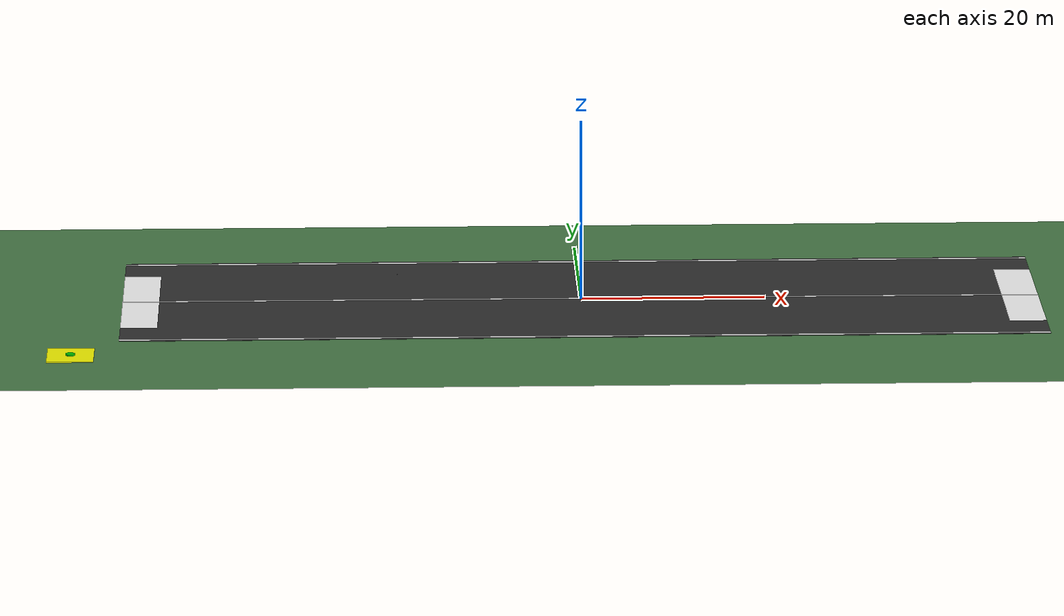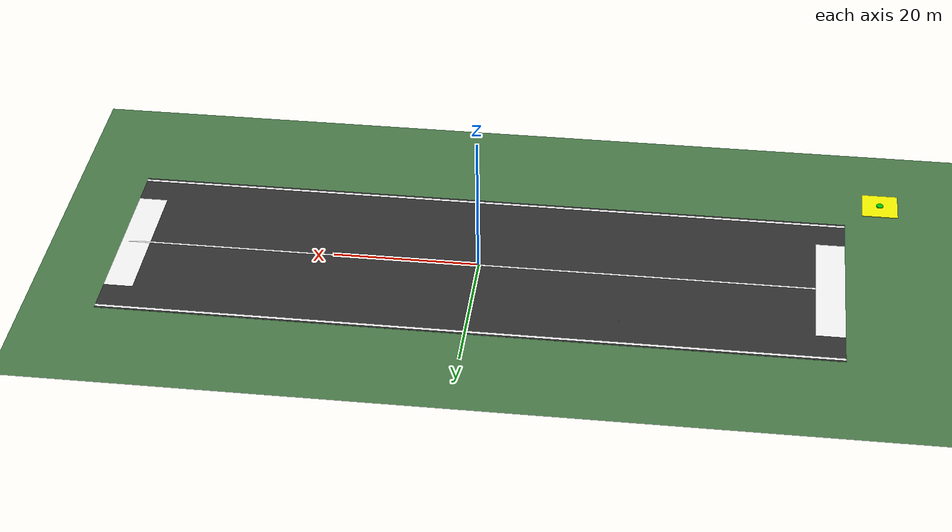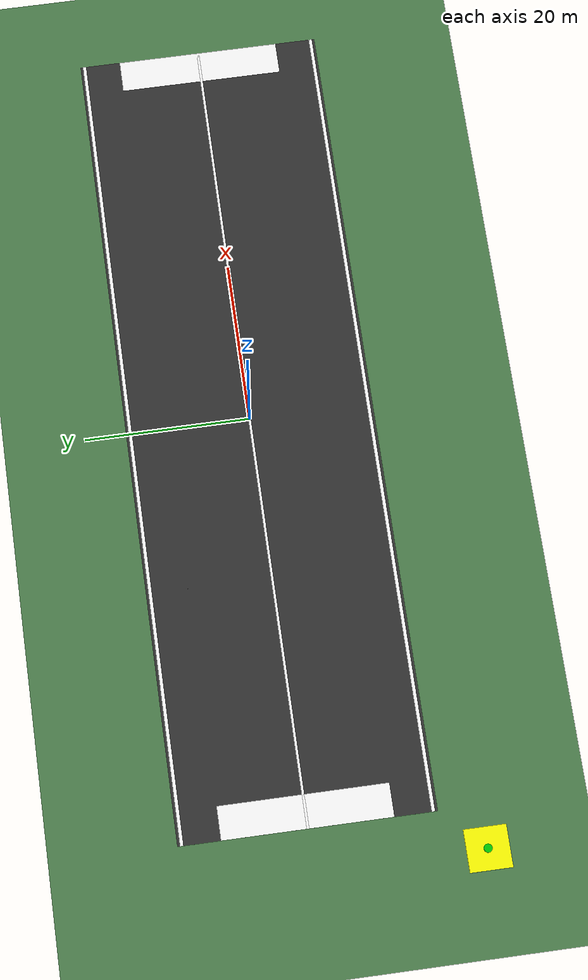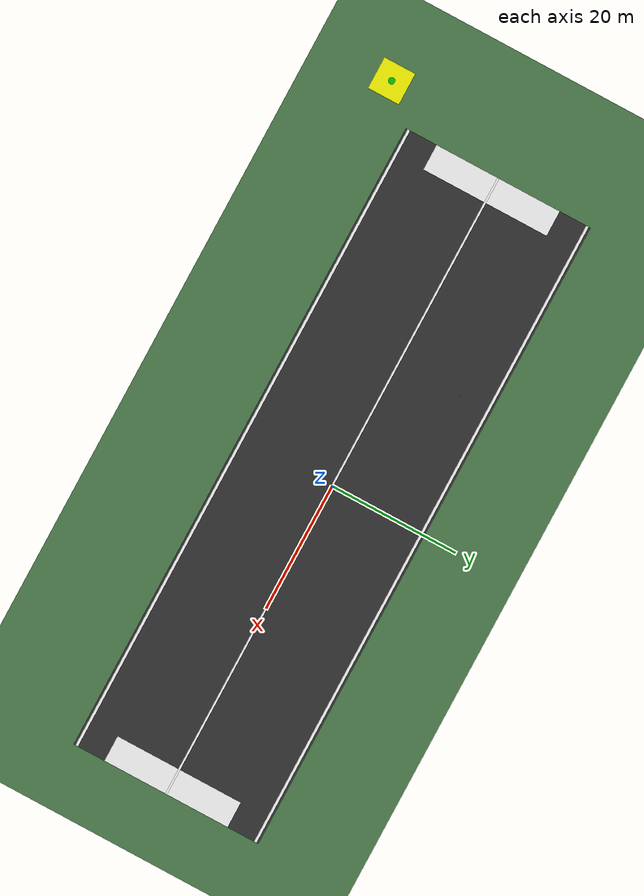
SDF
<?xml version="1.0" ?>
<sdf version="1.8">
  <world name="runway_world">

    <!-- Physics Configuration -->
    <physics name="1ms" type="dart">
      <max_step_size>0.001</max_step_size>
      <real_time_factor>1</real_time_factor>
      <real_time_update_rate>1000</real_time_update_rate>
    </physics>

    <!-- Required Plugins for Gazebo Harmonic -->
    <plugin filename="gz-sim-physics-system" name="gz::sim::systems::Physics"/>
    <plugin filename="gz-sim-user-commands-system" name="gz::sim::systems::UserCommands"/>
    <plugin filename="gz-sim-scene-broadcaster-system" name="gz::sim::systems::SceneBroadcaster"/>
    <plugin filename="gz-sim-sensors-system" name="gz::sim::systems::Sensors">
      <render_engine>ogre</render_engine>
    </plugin>
    <plugin filename="gz-sim-imu-system" name="gz::sim::systems::Imu"/>
    <plugin filename="gz-sim-contact-system" name="gz::sim::systems::Contact"/>

    <!-- Scene Configuration -->
    <scene>
      <ambient>0.6 0.6 0.6 1</ambient>
      <background>0.4 0.6 0.9 1</background>
      <shadows>true</shadows>
      <grid>false</grid>
    </scene>

    <!-- Lighting - Sun -->
    <light type="directional" name="sun">
      <cast_shadows>true</cast_shadows>
      <pose>0 0 50 0 0 0</pose>
      <diffuse>1 1 1 1</diffuse>
      <specular>0.5 0.5 0.5 1</specular>
      <attenuation>
        <range>1000</range>
        <constant>0.9</constant>
        <linear>0.01</linear>
        <quadratic>0.001</quadratic>
      </attenuation>
      <direction>-0.5 0.2 -0.9</direction>
    </light>

    <!-- Ground Plane (Grass/Terrain around runway) -->
    <model name="ground_plane">
      <static>true</static>
      <link name="link">
        <collision name="collision">
          <geometry>
            <plane>
              <normal>0 0 1</normal>
              <size>500 500</size>
            </plane>
          </geometry>
          <surface>
            <friction>
              <ode>
                <mu>100</mu>
                <mu2>50</mu2>
              </ode>
            </friction>
          </surface>
        </collision>
        <visual name="visual">
          <cast_shadows>false</cast_shadows>
          <geometry>
            <plane>
              <normal>0 0 1</normal>
              <size>500 500</size>
            </plane>
          </geometry>
          <material>
            <ambient>0.2 0.4 0.2 1</ambient>
            <diffuse>0.3 0.5 0.3 1</diffuse>
            <specular>0.01 0.01 0.01 1</specular>
          </material>
        </visual>
      </link>
    </model>

    <!-- Runway Surface (100m x 30m) -->
    <model name="runway">
      <static>true</static>
      <pose>0 0 0.005 0 0 0</pose>
      <link name="runway_link">
        <!-- Main runway surface -->
        <collision name="collision">
          <geometry>
            <box>
              <size>100 30 0.01</size>
            </box>
          </geometry>
          <surface>
            <friction>
              <ode>
                <mu>0.8</mu>
                <mu2>0.8</mu2>
              </ode>
            </friction>
          </surface>
        </collision>
        <visual name="runway_surface">
          <geometry>
            <box>
              <size>100 30 0.01</size>
            </box>
          </geometry>
          <material>
            <ambient>0.15 0.15 0.15 1</ambient>
            <diffuse>0.2 0.2 0.2 1</diffuse>
            <specular>0.1 0.1 0.1 1</specular>
          </material>
        </visual>

        <!-- Center line (dashed white) -->
        <visual name="centerline">
          <pose>0 0 0.006 0 0 0</pose>
          <geometry>
            <box>
              <size>100 0.3 0.001</size>
            </box>
          </geometry>
          <material>
            <ambient>1 1 1 1</ambient>
            <diffuse>1 1 1 1</diffuse>
          </material>
        </visual>

        <!-- Left edge line -->
        <visual name="left_edge">
          <pose>0 14.5 0.006 0 0 0</pose>
          <geometry>
            <box>
              <size>100 0.4 0.001</size>
            </box>
          </geometry>
          <material>
            <ambient>1 1 1 1</ambient>
            <diffuse>1 1 1 1</diffuse>
          </material>
        </visual>

        <!-- Right edge line -->
        <visual name="right_edge">
          <pose>0 -14.5 0.006 0 0 0</pose>
          <geometry>
            <box>
              <size>100 0.4 0.001</size>
            </box>
          </geometry>
          <material>
            <ambient>1 1 1 1</ambient>
            <diffuse>1 1 1 1</diffuse>
          </material>
        </visual>

        <!-- Threshold markings (left side) -->
        <visual name="threshold_left">
          <pose>-48 0 0.006 0 0 0</pose>
          <geometry>
            <box>
              <size>4 20 0.001</size>
            </box>
          </geometry>
          <material>
            <ambient>1 1 1 1</ambient>
            <diffuse>1 1 1 1</diffuse>
          </material>
        </visual>

        <!-- Threshold markings (right side) -->
        <visual name="threshold_right">
          <pose>48 0 0.006 0 0 0</pose>
          <geometry>
            <box>
              <size>4 20 0.001</size>
            </box>
          </geometry>
          <material>
            <ambient>1 1 1 1</ambient>
            <diffuse>1 1 1 1</diffuse>
          </material>
        </visual>
      </link>
    </model>

    <!-- UGV Base Station / Home Position -->
    <model name="base_station">
      <static>true</static>
      <pose>-55 -20 0 0 0 0</pose>
      <link name="link">
        <visual name="platform">
          <geometry>
            <box>
              <size>5 5 0.1</size>
            </box>
          </geometry>
          <material>
            <ambient>0.8 0.8 0 1</ambient>
            <diffuse>1 1 0 1</diffuse>
          </material>
        </visual>
        <visual name="marker">
          <pose>0 0 0.1 0 0 0</pose>
          <geometry>
            <cylinder>
              <radius>0.5</radius>
              <length>0.2</length>
            </cylinder>
          </geometry>
          <material>
            <ambient>0 0.5 0 1</ambient>
            <diffuse>0 0.8 0 1</diffuse>
          </material>
        </visual>
      </link>
    </model>

    <!-- FOD Objects - Sample Debris for Detection -->

    <!-- FOD 1: Bolt -->
    <model name="fod_bolt_1">
      <static>true</static>
      <pose>10 5 0.015 0.1 0.2 0.5</pose>
      <link name="link">
        <visual name="visual">
          <geometry>
            <cylinder>
              <radius>0.008</radius>
              <length>0.04</length>
            </cylinder>
          </geometry>
          <material>
            <ambient>0.5 0.5 0.5 1</ambient>
            <diffuse>0.7 0.7 0.7 1</diffuse>
            <specular>0.9 0.9 0.9 1</specular>
          </material>
        </visual>
        <collision name="collision">
          <geometry>
            <cylinder>
              <radius>0.008</radius>
              <length>0.04</length>
            </cylinder>
          </geometry>
        </collision>
      </link>
    </model>

    <!-- FOD 2: Washer -->
    <model name="fod_washer_1">
      <static>true</static>
      <pose>-15 -3 0.012 0 0 0.8</pose>
      <link name="link">
        <visual name="visual">
          <geometry>
            <cylinder>
              <radius>0.015</radius>
              <length>0.003</length>
            </cylinder>
          </geometry>
          <material>
            <ambient>0.6 0.6 0.6 1</ambient>
            <diffuse>0.8 0.8 0.8 1</diffuse>
            <specular>0.95 0.95 0.95 1</specular>
          </material>
        </visual>
        <collision name="collision">
          <geometry>
            <cylinder>
              <radius>0.015</radius>
              <length>0.003</length>
            </cylinder>
          </geometry>
        </collision>
      </link>
    </model>

    <!-- FOD 3: Metal Fragment -->
    <model name="fod_fragment_1">
      <static>true</static>
      <pose>25 -8 0.015 0.3 0.1 1.2</pose>
      <link name="link">
        <visual name="visual">
          <geometry>
            <box>
              <size>0.05 0.03 0.005</size>
            </box>
          </geometry>
          <material>
            <ambient>0.4 0.35 0.3 1</ambient>
            <diffuse>0.5 0.45 0.4 1</diffuse>
            <specular>0.3 0.3 0.3 1</specular>
          </material>
        </visual>
        <collision name="collision">
          <geometry>
            <box>
              <size>0.05 0.03 0.005</size>
            </box>
          </geometry>
        </collision>
      </link>
    </model>

    <!-- FOD 4: Wire -->
    <model name="fod_wire_1">
      <static>true</static>
      <pose>-30 7 0.012 0 0 0.3</pose>
      <link name="link">
        <visual name="visual">
          <geometry>
            <cylinder>
              <radius>0.002</radius>
              <length>0.15</length>
            </cylinder>
          </geometry>
          <material>
            <ambient>0.1 0.1 0.1 1</ambient>
            <diffuse>0.15 0.15 0.15 1</diffuse>
          </material>
        </visual>
        <collision name="collision">
          <geometry>
            <cylinder>
              <radius>0.002</radius>
              <length>0.15</length>
            </cylinder>
          </geometry>
        </collision>
      </link>
    </model>

    <!-- FOD 5: Nut -->
    <model name="fod_nut_1">
      <static>true</static>
      <pose>5 -12 0.012 0 0 0.7</pose>
      <link name="link">
        <visual name="visual">
          <geometry>
            <cylinder>
              <radius>0.01</radius>
              <length>0.008</length>
            </cylinder>
          </geometry>
          <material>
            <ambient>0.55 0.55 0.55 1</ambient>
            <diffuse>0.75 0.75 0.75 1</diffuse>
            <specular>0.9 0.9 0.9 1</specular>
          </material>
        </visual>
        <collision name="collision">
          <geometry>
            <cylinder>
              <radius>0.01</radius>
              <length>0.008</length>
            </cylinder>
          </geometry>
        </collision>
      </link>
    </model>

    <!-- FOD 6: Rubber piece -->
    <model name="fod_rubber_1">
      <static>true</static>
      <pose>-20 10 0.015 0 0 2.1</pose>
      <link name="link">
        <visual name="visual">
          <geometry>
            <box>
              <size>0.08 0.04 0.015</size>
            </box>
          </geometry>
          <material>
            <ambient>0.1 0.1 0.1 1</ambient>
            <diffuse>0.15 0.15 0.15 1</diffuse>
          </material>
        </visual>
        <collision name="collision">
          <geometry>
            <box>
              <size>0.08 0.04 0.015</size>
            </box>
          </geometry>
        </collision>
      </link>
    </model>

    <!-- FOD 7: Screw -->
    <model name="fod_screw_1">
      <static>true</static>
      <pose>35 2 0.012 0.2 0 0.9</pose>
      <link name="link">
        <visual name="visual">
          <geometry>
            <cylinder>
              <radius>0.004</radius>
              <length>0.025</length>
            </cylinder>
          </geometry>
          <material>
            <ambient>0.5 0.5 0.5 1</ambient>
            <diffuse>0.7 0.7 0.7 1</diffuse>
            <specular>0.85 0.85 0.85 1</specular>
          </material>
        </visual>
        <collision name="collision">
          <geometry>
            <cylinder>
              <radius>0.004</radius>
              <length>0.025</length>
            </cylinder>
          </geometry>
        </collision>
      </link>
    </model>

    <!-- FOD 8: Plastic piece -->
    <model name="fod_plastic_1">
      <static>true</static>
      <pose>-5 -5 0.012 0 0 1.5</pose>
      <link name="link">
        <visual name="visual">
          <geometry>
            <box>
              <size>0.06 0.04 0.008</size>
            </box>
          </geometry>
          <material>
            <ambient>0.8 0.2 0.2 1</ambient>
            <diffuse>0.9 0.3 0.3 1</diffuse>
          </material>
        </visual>
        <collision name="collision">
          <geometry>
            <box>
              <size>0.06 0.04 0.008</size>
            </box>
          </geometry>
        </collision>
      </link>
    </model>

  </world>
</sdf>
